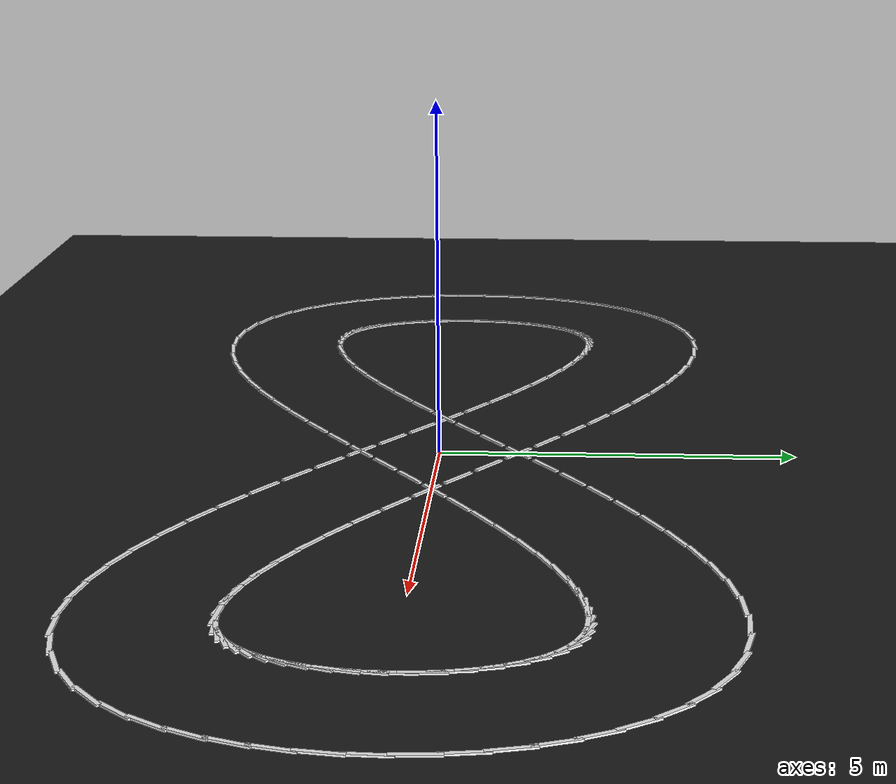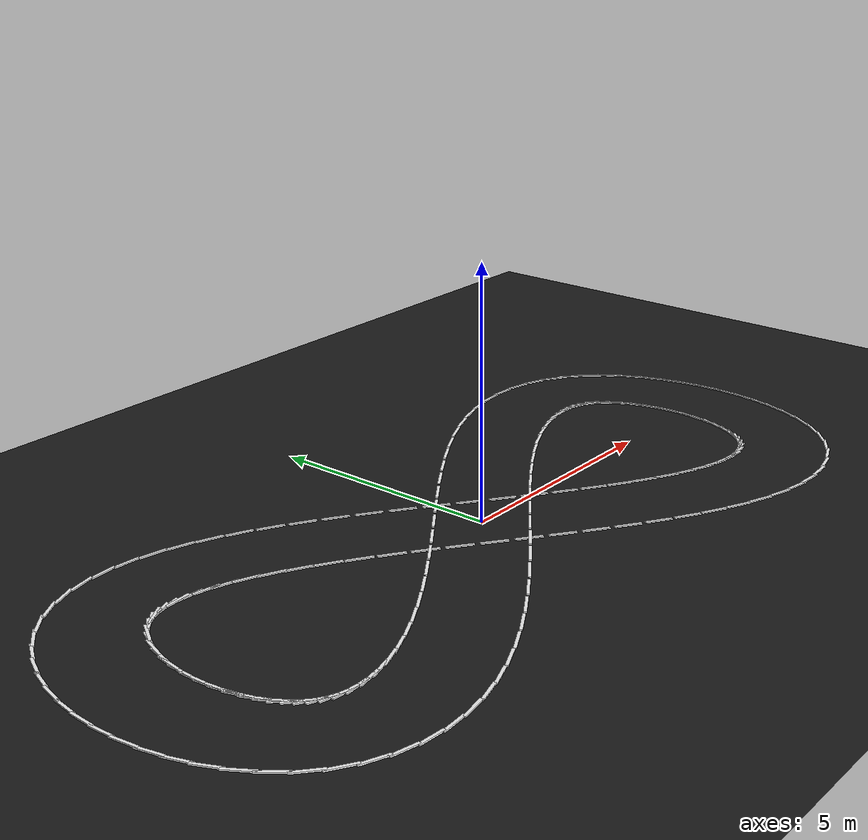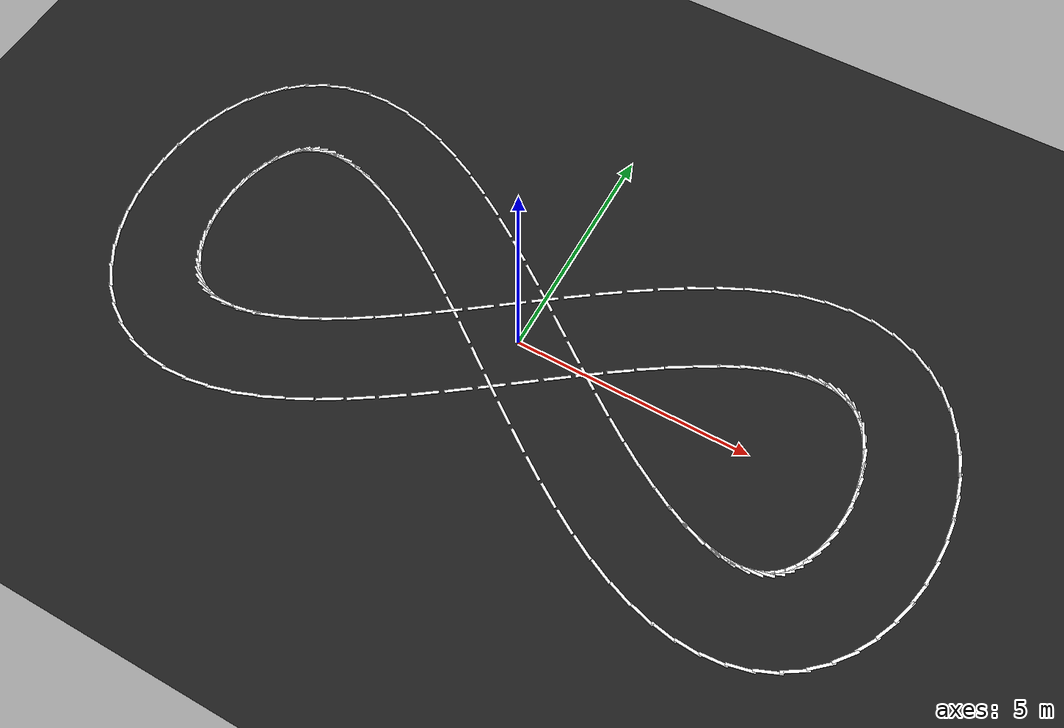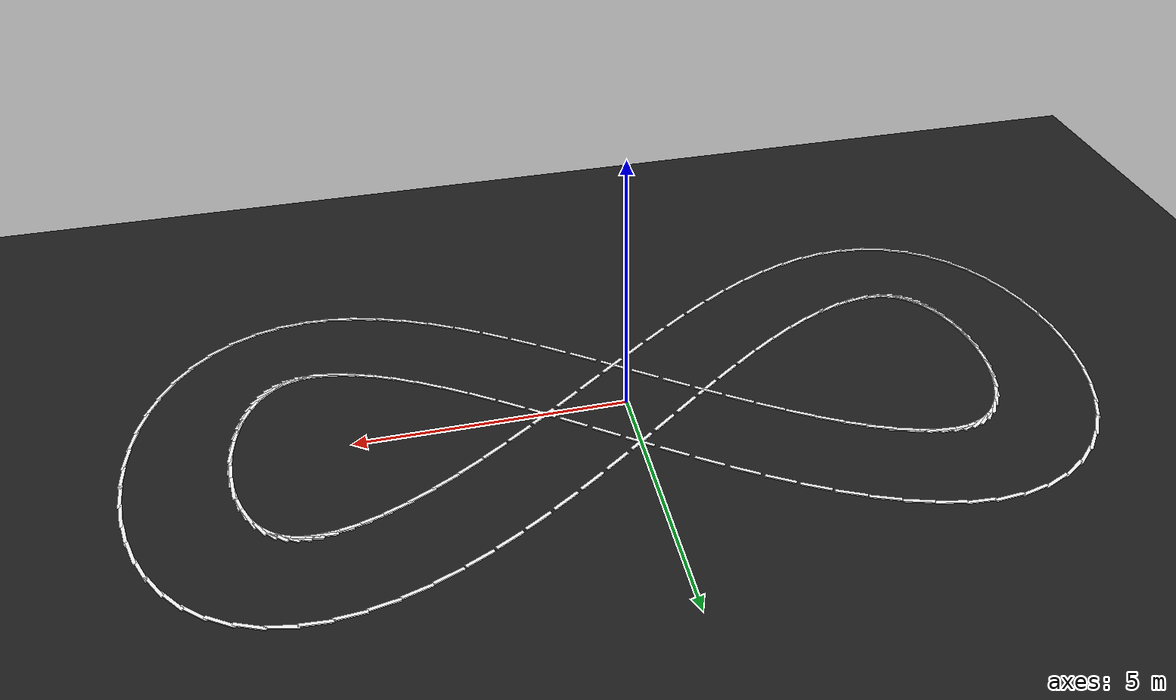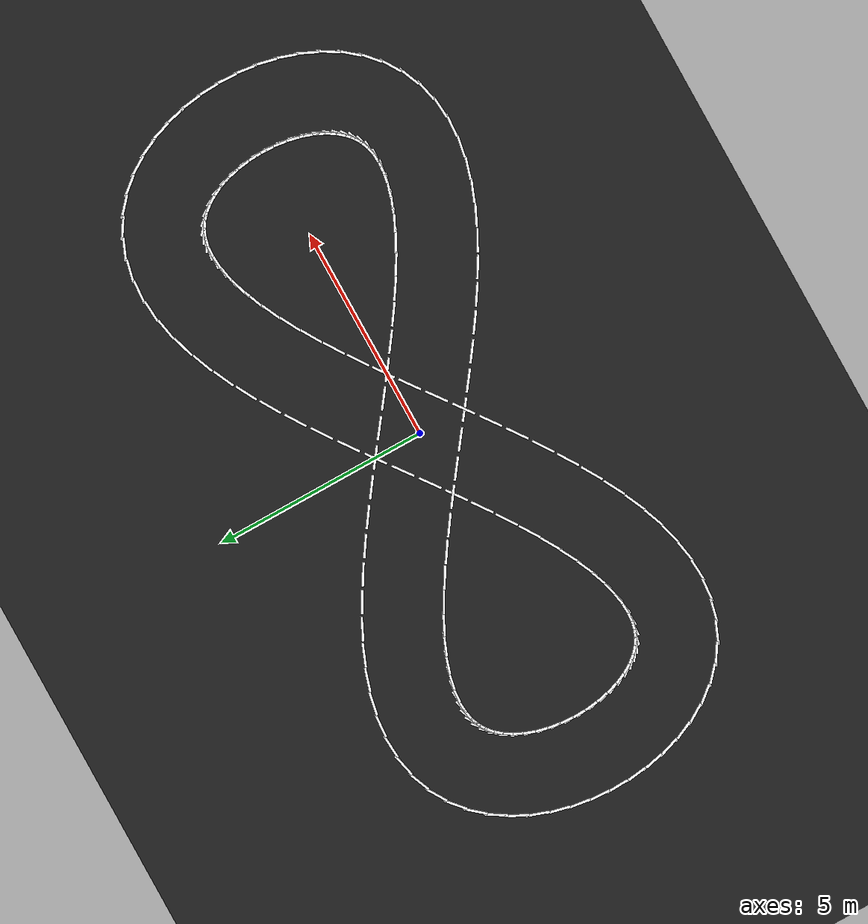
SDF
<sdf version="1.9">
 <world name="eight_shape_road_world">
  <model name="ground">
   <static>true</static>
   <link name="ground_link">
    <collision name="collision">
     <geometry><plane><normal>0 0 1</normal><size>50 50</size></plane></geometry>
    </collision>
    <visual name="visual">
     <geometry><plane><normal>0 0 1</normal><size>50 50</size></plane></geometry>
     <material><diffuse>0.12 0.12 0.12 1</diffuse></material>
    </visual>
   </link>
  </model>
  <model name="eight_lane_markers">
   <static>true</static>
   <link name="link">
    <visual name="seg_0">
     <pose>0.539 -0.721 0.015 0 0 0.642</pose>
     <geometry><box><size>0.55 0.06 0.025</size></box></geometry>
     <material><diffuse>1 1 1 1</diffuse></material>
    </visual>
    <visual name="seg_1">
     <pose>1.058 -0.332 0.015 0 0 0.636</pose>
     <geometry><box><size>0.55 0.06 0.025</size></box></geometry>
     <material><diffuse>1 1 1 1</diffuse></material>
    </visual>
    <visual name="seg_2">
     <pose>1.570 0.046 0.015 0 0 0.624</pose>
     <geometry><box><size>0.55 0.06 0.025</size></box></geometry>
     <material><diffuse>1 1 1 1</diffuse></material>
    </visual>
    <visual name="seg_3">
     <pose>2.072 0.407 0.015 0 0 0.604</pose>
     <geometry><box><size>0.55 0.06 0.025</size></box></geometry>
     <material><diffuse>1 1 1 1</diffuse></material>
    </visual>
    <visual name="seg_4">
     <pose>2.562 0.746 0.015 0 0 0.577</pose>
     <geometry><box><size>0.55 0.06 0.025</size></box></geometry>
     <material><diffuse>1 1 1 1</diffuse></material>
    </visual>
    <visual name="seg_5">
     <pose>3.036 1.055 0.015 0 0 0.542</pose>
     <geometry><box><size>0.55 0.06 0.025</size></box></geometry>
     <material><diffuse>1 1 1 1</diffuse></material>
    </visual>
    <visual name="seg_6">
     <pose>3.491 1.330 0.015 0 0 0.497</pose>
     <geometry><box><size>0.55 0.06 0.025</size></box></geometry>
     <material><diffuse>1 1 1 1</diffuse></material>
    </visual>
    <visual name="seg_7">
     <pose>3.923 1.566 0.015 0 0 0.441</pose>
     <geometry><box><size>0.55 0.06 0.025</size></box></geometry>
     <material><diffuse>1 1 1 1</diffuse></material>
    </visual>
    <visual name="seg_8">
     <pose>4.327 1.760 0.015 0 0 0.372</pose>
     <geometry><box><size>0.55 0.06 0.025</size></box></geometry>
     <material><diffuse>1 1 1 1</diffuse></material>
    </visual>
    <visual name="seg_9">
     <pose>4.700 1.909 0.015 0 0 0.288</pose>
     <geometry><box><size>0.55 0.06 0.025</size></box></geometry>
     <material><diffuse>1 1 1 1</diffuse></material>
    </visual>
    <visual name="seg_10">
     <pose>5.037 2.013 0.015 0 0 0.187</pose>
     <geometry><box><size>0.55 0.06 0.025</size></box></geometry>
     <material><diffuse>1 1 1 1</diffuse></material>
    </visual>
    <visual name="seg_11">
     <pose>5.335 2.076 0.015 0 0 0.067</pose>
     <geometry><box><size>0.55 0.06 0.025</size></box></geometry>
     <material><diffuse>1 1 1 1</diffuse></material>
    </visual>
    <visual name="seg_12">
     <pose>5.592 2.102 0.015 0 0 -0.072</pose>
     <geometry><box><size>0.55 0.06 0.025</size></box></geometry>
     <material><diffuse>1 1 1 1</diffuse></material>
    </visual>
    <visual name="seg_13">
     <pose>5.813 2.097 0.015 0 0 -0.227</pose>
     <geometry><box><size>0.55 0.06 0.025</size></box></geometry>
     <material><diffuse>1 1 1 1</diffuse></material>
    </visual>
    <visual name="seg_14">
     <pose>6.003 2.066 0.015 0 0 -0.392</pose>
     <geometry><box><size>0.55 0.06 0.025</size></box></geometry>
     <material><diffuse>1 1 1 1</diffuse></material>
    </visual>
    <visual name="seg_15">
     <pose>6.173 2.009 0.015 0 0 -0.561</pose>
     <geometry><box><size>0.55 0.06 0.025</size></box></geometry>
     <material><diffuse>1 1 1 1</diffuse></material>
    </visual>
    <visual name="seg_16">
     <pose>6.332 1.924 0.015 0 0 -0.724</pose>
     <geometry><box><size>0.55 0.06 0.025</size></box></geometry>
     <material><diffuse>1 1 1 1</diffuse></material>
    </visual>
    <visual name="seg_17">
     <pose>6.484 1.803 0.015 0 0 -0.875</pose>
     <geometry><box><size>0.55 0.06 0.025</size></box></geometry>
     <material><diffuse>1 1 1 1</diffuse></material>
    </visual>
    <visual name="seg_18">
     <pose>6.628 1.644 0.015 0 0 -1.012</pose>
     <geometry><box><size>0.55 0.06 0.025</size></box></geometry>
     <material><diffuse>1 1 1 1</diffuse></material>
    </visual>
    <visual name="seg_19">
     <pose>6.760 1.446 0.015 0 0 -1.135</pose>
     <geometry><box><size>0.55 0.06 0.025</size></box></geometry>
     <material><diffuse>1 1 1 1</diffuse></material>
    </visual>
    <visual name="seg_20">
     <pose>6.875 1.212 0.015 0 0 -1.245</pose>
     <geometry><box><size>0.55 0.06 0.025</size></box></geometry>
     <material><diffuse>1 1 1 1</diffuse></material>
    </visual>
    <visual name="seg_21">
     <pose>6.969 0.947 0.015 0 0 -1.345</pose>
     <geometry><box><size>0.55 0.06 0.025</size></box></geometry>
     <material><diffuse>1 1 1 1</diffuse></material>
    </visual>
    <visual name="seg_22">
     <pose>7.039 0.658 0.015 0 0 -1.438</pose>
     <geometry><box><size>0.55 0.06 0.025</size></box></geometry>
     <material><diffuse>1 1 1 1</diffuse></material>
    </visual>
    <visual name="seg_23">
     <pose>7.084 0.352 0.015 0 0 -1.527</pose>
     <geometry><box><size>0.55 0.06 0.025</size></box></geometry>
     <material><diffuse>1 1 1 1</diffuse></material>
    </visual>
    <visual name="seg_24">
     <pose>7.101 0.039 0.015 0 0 -1.615</pose>
     <geometry><box><size>0.55 0.06 0.025</size></box></geometry>
     <material><diffuse>1 1 1 1</diffuse></material>
    </visual>
    <visual name="seg_25">
     <pose>7.091 -0.273 0.015 0 0 -1.703</pose>
     <geometry><box><size>0.55 0.06 0.025</size></box></geometry>
     <material><diffuse>1 1 1 1</diffuse></material>
    </visual>
    <visual name="seg_26">
     <pose>7.054 -0.575 0.015 0 0 -1.796</pose>
     <geometry><box><size>0.55 0.06 0.025</size></box></geometry>
     <material><diffuse>1 1 1 1</diffuse></material>
    </visual>
    <visual name="seg_27">
     <pose>6.994 -0.860 0.015 0 0 -1.897</pose>
     <geometry><box><size>0.55 0.06 0.025</size></box></geometry>
     <material><diffuse>1 1 1 1</diffuse></material>
    </visual>
    <visual name="seg_28">
     <pose>6.912 -1.120 0.015 0 0 -2.007</pose>
     <geometry><box><size>0.55 0.06 0.025</size></box></geometry>
     <material><diffuse>1 1 1 1</diffuse></material>
    </visual>
    <visual name="seg_29">
     <pose>6.812 -1.349 0.015 0 0 -2.129</pose>
     <geometry><box><size>0.55 0.06 0.025</size></box></geometry>
     <material><diffuse>1 1 1 1</diffuse></material>
    </visual>
    <visual name="seg_30">
     <pose>6.700 -1.544 0.015 0 0 -2.267</pose>
     <geometry><box><size>0.55 0.06 0.025</size></box></geometry>
     <material><diffuse>1 1 1 1</diffuse></material>
    </visual>
    <visual name="seg_31">
     <pose>6.579 -1.706 0.015 0 0 -2.418</pose>
     <geometry><box><size>0.55 0.06 0.025</size></box></geometry>
     <material><diffuse>1 1 1 1</diffuse></material>
    </visual>
    <visual name="seg_32">
     <pose>6.450 -1.836 0.015 0 0 -2.581</pose>
     <geometry><box><size>0.55 0.06 0.025</size></box></geometry>
     <material><diffuse>1 1 1 1</diffuse></material>
    </visual>
    <visual name="seg_33">
     <pose>6.308 -1.940 0.015 0 0 -2.749</pose>
     <geometry><box><size>0.55 0.06 0.025</size></box></geometry>
     <material><diffuse>1 1 1 1</diffuse></material>
    </visual>
    <visual name="seg_34">
     <pose>6.145 -2.021 0.015 0 0 -2.915</pose>
     <geometry><box><size>0.55 0.06 0.025</size></box></geometry>
     <material><diffuse>1 1 1 1</diffuse></material>
    </visual>
    <visual name="seg_35">
     <pose>5.950 -2.077 0.015 0 0 -3.070</pose>
     <geometry><box><size>0.55 0.06 0.025</size></box></geometry>
     <material><diffuse>1 1 1 1</diffuse></material>
    </visual>
    <visual name="seg_36">
     <pose>5.717 -2.102 0.015 0 0 3.075</pose>
     <geometry><box><size>0.55 0.06 0.025</size></box></geometry>
     <material><diffuse>1 1 1 1</diffuse></material>
    </visual>
    <visual name="seg_37">
     <pose>5.442 -2.090 0.015 0 0 2.955</pose>
     <geometry><box><size>0.55 0.06 0.025</size></box></geometry>
     <material><diffuse>1 1 1 1</diffuse></material>
    </visual>
    <visual name="seg_38">
     <pose>5.126 -2.035 0.015 0 0 2.853</pose>
     <geometry><box><size>0.55 0.06 0.025</size></box></geometry>
     <material><diffuse>1 1 1 1</diffuse></material>
    </visual>
    <visual name="seg_39">
     <pose>4.772 -1.933 0.015 0 0 2.769</pose>
     <geometry><box><size>0.55 0.06 0.025</size></box></geometry>
     <material><diffuse>1 1 1 1</diffuse></material>
    </visual>
    <visual name="seg_40">
     <pose>4.384 -1.784 0.015 0 0 2.700</pose>
     <geometry><box><size>0.55 0.06 0.025</size></box></geometry>
     <material><diffuse>1 1 1 1</diffuse></material>
    </visual>
    <visual name="seg_41">
     <pose>3.968 -1.589 0.015 0 0 2.644</pose>
     <geometry><box><size>0.55 0.06 0.025</size></box></geometry>
     <material><diffuse>1 1 1 1</diffuse></material>
    </visual>
    <visual name="seg_42">
     <pose>3.526 -1.350 0.015 0 0 2.600</pose>
     <geometry><box><size>0.55 0.06 0.025</size></box></geometry>
     <material><diffuse>1 1 1 1</diffuse></material>
    </visual>
    <visual name="seg_43">
     <pose>3.063 -1.072 0.015 0 0 2.564</pose>
     <geometry><box><size>0.55 0.06 0.025</size></box></geometry>
     <material><diffuse>1 1 1 1</diffuse></material>
    </visual>
    <visual name="seg_44">
     <pose>2.582 -0.759 0.015 0 0 2.537</pose>
     <geometry><box><size>0.55 0.06 0.025</size></box></geometry>
     <material><diffuse>1 1 1 1</diffuse></material>
    </visual>
    <visual name="seg_45">
     <pose>2.086 -0.417 0.015 0 0 2.518</pose>
     <geometry><box><size>0.55 0.06 0.025</size></box></geometry>
     <material><diffuse>1 1 1 1</diffuse></material>
    </visual>
    <visual name="seg_46">
     <pose>1.579 -0.053 0.015 0 0 2.505</pose>
     <geometry><box><size>0.55 0.06 0.025</size></box></geometry>
     <material><diffuse>1 1 1 1</diffuse></material>
    </visual>
    <visual name="seg_47">
     <pose>1.062 0.329 0.015 0 0 2.499</pose>
     <geometry><box><size>0.55 0.06 0.025</size></box></geometry>
     <material><diffuse>1 1 1 1</diffuse></material>
    </visual>
    <visual name="seg_48">
     <pose>0.539 0.721 0.015 0 0 2.499</pose>
     <geometry><box><size>0.55 0.06 0.025</size></box></geometry>
     <material><diffuse>1 1 1 1</diffuse></material>
    </visual>
    <visual name="seg_49">
     <pose>0.012 1.115 0.015 0 0 2.505</pose>
     <geometry><box><size>0.55 0.06 0.025</size></box></geometry>
     <material><diffuse>1 1 1 1</diffuse></material>
    </visual>
    <visual name="seg_50">
     <pose>-0.519 1.507 0.015 0 0 2.518</pose>
     <geometry><box><size>0.55 0.06 0.025</size></box></geometry>
     <material><diffuse>1 1 1 1</diffuse></material>
    </visual>
    <visual name="seg_51">
     <pose>-1.049 1.889 0.015 0 0 2.537</pose>
     <geometry><box><size>0.55 0.06 0.025</size></box></geometry>
     <material><diffuse>1 1 1 1</diffuse></material>
    </visual>
    <visual name="seg_52">
     <pose>-1.579 2.254 0.015 0 0 2.564</pose>
     <geometry><box><size>0.55 0.06 0.025</size></box></geometry>
     <material><diffuse>1 1 1 1</diffuse></material>
    </visual>
    <visual name="seg_53">
     <pose>-2.107 2.597 0.015 0 0 2.600</pose>
     <geometry><box><size>0.55 0.06 0.025</size></box></geometry>
     <material><diffuse>1 1 1 1</diffuse></material>
    </visual>
    <visual name="seg_54">
     <pose>-2.632 2.912 0.015 0 0 2.644</pose>
     <geometry><box><size>0.55 0.06 0.025</size></box></geometry>
     <material><diffuse>1 1 1 1</diffuse></material>
    </visual>
    <visual name="seg_55">
     <pose>-3.154 3.194 0.015 0 0 2.700</pose>
     <geometry><box><size>0.55 0.06 0.025</size></box></geometry>
     <material><diffuse>1 1 1 1</diffuse></material>
    </visual>
    <visual name="seg_56">
     <pose>-3.673 3.436 0.015 0 0 2.769</pose>
     <geometry><box><size>0.55 0.06 0.025</size></box></geometry>
     <material><diffuse>1 1 1 1</diffuse></material>
    </visual>
    <visual name="seg_57">
     <pose>-4.189 3.635 0.015 0 0 2.853</pose>
     <geometry><box><size>0.55 0.06 0.025</size></box></geometry>
     <material><diffuse>1 1 1 1</diffuse></material>
    </visual>
    <visual name="seg_58">
     <pose>-4.703 3.782 0.015 0 0 2.955</pose>
     <geometry><box><size>0.55 0.06 0.025</size></box></geometry>
     <material><diffuse>1 1 1 1</diffuse></material>
    </visual>
    <visual name="seg_59">
     <pose>-5.214 3.872 0.015 0 0 3.075</pose>
     <geometry><box><size>0.55 0.06 0.025</size></box></geometry>
     <material><diffuse>1 1 1 1</diffuse></material>
    </visual>
    <visual name="seg_60">
     <pose>-5.721 3.898 0.015 0 0 -3.070</pose>
     <geometry><box><size>0.55 0.06 0.025</size></box></geometry>
     <material><diffuse>1 1 1 1</diffuse></material>
    </visual>
    <visual name="seg_61">
     <pose>-6.217 3.851 0.015 0 0 -2.915</pose>
     <geometry><box><size>0.55 0.06 0.025</size></box></geometry>
     <material><diffuse>1 1 1 1</diffuse></material>
    </visual>
    <visual name="seg_62">
     <pose>-6.691 3.729 0.015 0 0 -2.749</pose>
     <geometry><box><size>0.55 0.06 0.025</size></box></geometry>
     <material><diffuse>1 1 1 1</diffuse></material>
    </visual>
    <visual name="seg_63">
     <pose>-7.130 3.534 0.015 0 0 -2.581</pose>
     <geometry><box><size>0.55 0.06 0.025</size></box></geometry>
     <material><diffuse>1 1 1 1</diffuse></material>
    </visual>
    <visual name="seg_64">
     <pose>-7.524 3.273 0.015 0 0 -2.418</pose>
     <geometry><box><size>0.55 0.06 0.025</size></box></geometry>
     <material><diffuse>1 1 1 1</diffuse></material>
    </visual>
    <visual name="seg_65">
     <pose>-7.866 2.957 0.015 0 0 -2.267</pose>
     <geometry><box><size>0.55 0.06 0.025</size></box></geometry>
     <material><diffuse>1 1 1 1</diffuse></material>
    </visual>
    <visual name="seg_66">
     <pose>-8.154 2.598 0.015 0 0 -2.129</pose>
     <geometry><box><size>0.55 0.06 0.025</size></box></geometry>
     <material><diffuse>1 1 1 1</diffuse></material>
    </visual>
    <visual name="seg_67">
     <pose>-8.391 2.206 0.015 0 0 -2.007</pose>
     <geometry><box><size>0.55 0.06 0.025</size></box></geometry>
     <material><diffuse>1 1 1 1</diffuse></material>
    </visual>
    <visual name="seg_68">
     <pose>-8.580 1.788 0.015 0 0 -1.897</pose>
     <geometry><box><size>0.55 0.06 0.025</size></box></geometry>
     <material><diffuse>1 1 1 1</diffuse></material>
    </visual>
    <visual name="seg_69">
     <pose>-8.723 1.349 0.015 0 0 -1.796</pose>
     <geometry><box><size>0.55 0.06 0.025</size></box></geometry>
     <material><diffuse>1 1 1 1</diffuse></material>
    </visual>
    <visual name="seg_70">
     <pose>-8.824 0.895 0.015 0 0 -1.703</pose>
     <geometry><box><size>0.55 0.06 0.025</size></box></geometry>
     <material><diffuse>1 1 1 1</diffuse></material>
    </visual>
    <visual name="seg_71">
     <pose>-8.882 0.431 0.015 0 0 -1.615</pose>
     <geometry><box><size>0.55 0.06 0.025</size></box></geometry>
     <material><diffuse>1 1 1 1</diffuse></material>
    </visual>
    <visual name="seg_72">
     <pose>-8.899 -0.039 0.015 0 0 -1.527</pose>
     <geometry><box><size>0.55 0.06 0.025</size></box></geometry>
     <material><diffuse>1 1 1 1</diffuse></material>
    </visual>
    <visual name="seg_73">
     <pose>-8.875 -0.511 0.015 0 0 -1.438</pose>
     <geometry><box><size>0.55 0.06 0.025</size></box></geometry>
     <material><diffuse>1 1 1 1</diffuse></material>
    </visual>
    <visual name="seg_74">
     <pose>-8.809 -0.978 0.015 0 0 -1.345</pose>
     <geometry><box><size>0.55 0.06 0.025</size></box></geometry>
     <material><diffuse>1 1 1 1</diffuse></material>
    </visual>
    <visual name="seg_75">
     <pose>-8.699 -1.436 0.015 0 0 -1.245</pose>
     <geometry><box><size>0.55 0.06 0.025</size></box></geometry>
     <material><diffuse>1 1 1 1</diffuse></material>
    </visual>
    <visual name="seg_76">
     <pose>-8.543 -1.880 0.015 0 0 -1.135</pose>
     <geometry><box><size>0.55 0.06 0.025</size></box></geometry>
     <material><diffuse>1 1 1 1</diffuse></material>
    </visual>
    <visual name="seg_77">
     <pose>-8.339 -2.303 0.015 0 0 -1.012</pose>
     <geometry><box><size>0.55 0.06 0.025</size></box></geometry>
     <material><diffuse>1 1 1 1</diffuse></material>
    </visual>
    <visual name="seg_78">
     <pose>-8.082 -2.698 0.015 0 0 -0.875</pose>
     <geometry><box><size>0.55 0.06 0.025</size></box></geometry>
     <material><diffuse>1 1 1 1</diffuse></material>
    </visual>
    <visual name="seg_79">
     <pose>-7.771 -3.055 0.015 0 0 -0.724</pose>
     <geometry><box><size>0.55 0.06 0.025</size></box></geometry>
     <material><diffuse>1 1 1 1</diffuse></material>
    </visual>
    <visual name="seg_80">
     <pose>-7.407 -3.360 0.015 0 0 -0.561</pose>
     <geometry><box><size>0.55 0.06 0.025</size></box></geometry>
     <material><diffuse>1 1 1 1</diffuse></material>
    </visual>
    <visual name="seg_81">
     <pose>-6.996 -3.603 0.015 0 0 -0.392</pose>
     <geometry><box><size>0.55 0.06 0.025</size></box></geometry>
     <material><diffuse>1 1 1 1</diffuse></material>
    </visual>
    <visual name="seg_82">
     <pose>-6.549 -3.775 0.015 0 0 -0.227</pose>
     <geometry><box><size>0.55 0.06 0.025</size></box></geometry>
     <material><diffuse>1 1 1 1</diffuse></material>
    </visual>
    <visual name="seg_83">
     <pose>-6.079 -3.872 0.015 0 0 -0.072</pose>
     <geometry><box><size>0.55 0.06 0.025</size></box></geometry>
     <material><diffuse>1 1 1 1</diffuse></material>
    </visual>
    <visual name="seg_84">
     <pose>-5.597 -3.898 0.015 0 0 0.067</pose>
     <geometry><box><size>0.55 0.06 0.025</size></box></geometry>
     <material><diffuse>1 1 1 1</diffuse></material>
    </visual>
    <visual name="seg_85">
     <pose>-5.107 -3.859 0.015 0 0 0.187</pose>
     <geometry><box><size>0.55 0.06 0.025</size></box></geometry>
     <material><diffuse>1 1 1 1</diffuse></material>
    </visual>
    <visual name="seg_86">
     <pose>-4.614 -3.761 0.015 0 0 0.288</pose>
     <geometry><box><size>0.55 0.06 0.025</size></box></geometry>
     <material><diffuse>1 1 1 1</diffuse></material>
    </visual>
    <visual name="seg_87">
     <pose>-4.117 -3.610 0.015 0 0 0.372</pose>
     <geometry><box><size>0.55 0.06 0.025</size></box></geometry>
     <material><diffuse>1 1 1 1</diffuse></material>
    </visual>
    <visual name="seg_88">
     <pose>-3.616 -3.412 0.015 0 0 0.441</pose>
     <geometry><box><size>0.55 0.06 0.025</size></box></geometry>
     <material><diffuse>1 1 1 1</diffuse></material>
    </visual>
    <visual name="seg_89">
     <pose>-3.109 -3.171 0.015 0 0 0.497</pose>
     <geometry><box><size>0.55 0.06 0.025</size></box></geometry>
     <material><diffuse>1 1 1 1</diffuse></material>
    </visual>
    <visual name="seg_90">
     <pose>-2.597 -2.892 0.015 0 0 0.542</pose>
     <geometry><box><size>0.55 0.06 0.025</size></box></geometry>
     <material><diffuse>1 1 1 1</diffuse></material>
    </visual>
    <visual name="seg_91">
     <pose>-2.080 -2.580 0.015 0 0 0.577</pose>
     <geometry><box><size>0.55 0.06 0.025</size></box></geometry>
     <material><diffuse>1 1 1 1</diffuse></material>
    </visual>
    <visual name="seg_92">
     <pose>-1.559 -2.241 0.015 0 0 0.604</pose>
     <geometry><box><size>0.55 0.06 0.025</size></box></geometry>
     <material><diffuse>1 1 1 1</diffuse></material>
    </visual>
    <visual name="seg_93">
     <pose>-1.035 -1.879 0.015 0 0 0.624</pose>
     <geometry><box><size>0.55 0.06 0.025</size></box></geometry>
     <material><diffuse>1 1 1 1</diffuse></material>
    </visual>
    <visual name="seg_94">
     <pose>-0.509 -1.500 0.015 0 0 0.636</pose>
     <geometry><box><size>0.55 0.06 0.025</size></box></geometry>
     <material><diffuse>1 1 1 1</diffuse></material>
    </visual>
    <visual name="seg_95">
     <pose>0.016 -1.112 0.015 0 0 0.642</pose>
     <geometry><box><size>0.55 0.06 0.025</size></box></geometry>
     <material><diffuse>1 1 1 1</diffuse></material>
    </visual>
    <visual name="seg_96">
     <pose>-0.539 0.721 0.015 0 0 0.642</pose>
     <geometry><box><size>0.55 0.06 0.025</size></box></geometry>
     <material><diffuse>1 1 1 1</diffuse></material>
    </visual>
    <visual name="seg_97">
     <pose>-0.012 1.115 0.015 0 0 0.636</pose>
     <geometry><box><size>0.55 0.06 0.025</size></box></geometry>
     <material><diffuse>1 1 1 1</diffuse></material>
    </visual>
    <visual name="seg_98">
     <pose>0.519 1.507 0.015 0 0 0.624</pose>
     <geometry><box><size>0.55 0.06 0.025</size></box></geometry>
     <material><diffuse>1 1 1 1</diffuse></material>
    </visual>
    <visual name="seg_99">
     <pose>1.049 1.889 0.015 0 0 0.604</pose>
     <geometry><box><size>0.55 0.06 0.025</size></box></geometry>
     <material><diffuse>1 1 1 1</diffuse></material>
    </visual>
    <visual name="seg_100">
     <pose>1.579 2.254 0.015 0 0 0.577</pose>
     <geometry><box><size>0.55 0.06 0.025</size></box></geometry>
     <material><diffuse>1 1 1 1</diffuse></material>
    </visual>
    <visual name="seg_101">
     <pose>2.107 2.597 0.015 0 0 0.542</pose>
     <geometry><box><size>0.55 0.06 0.025</size></box></geometry>
     <material><diffuse>1 1 1 1</diffuse></material>
    </visual>
    <visual name="seg_102">
     <pose>2.632 2.912 0.015 0 0 0.497</pose>
     <geometry><box><size>0.55 0.06 0.025</size></box></geometry>
     <material><diffuse>1 1 1 1</diffuse></material>
    </visual>
    <visual name="seg_103">
     <pose>3.154 3.194 0.015 0 0 0.441</pose>
     <geometry><box><size>0.55 0.06 0.025</size></box></geometry>
     <material><diffuse>1 1 1 1</diffuse></material>
    </visual>
    <visual name="seg_104">
     <pose>3.673 3.436 0.015 0 0 0.372</pose>
     <geometry><box><size>0.55 0.06 0.025</size></box></geometry>
     <material><diffuse>1 1 1 1</diffuse></material>
    </visual>
    <visual name="seg_105">
     <pose>4.189 3.635 0.015 0 0 0.288</pose>
     <geometry><box><size>0.55 0.06 0.025</size></box></geometry>
     <material><diffuse>1 1 1 1</diffuse></material>
    </visual>
    <visual name="seg_106">
     <pose>4.703 3.782 0.015 0 0 0.187</pose>
     <geometry><box><size>0.55 0.06 0.025</size></box></geometry>
     <material><diffuse>1 1 1 1</diffuse></material>
    </visual>
    <visual name="seg_107">
     <pose>5.214 3.872 0.015 0 0 0.067</pose>
     <geometry><box><size>0.55 0.06 0.025</size></box></geometry>
     <material><diffuse>1 1 1 1</diffuse></material>
    </visual>
    <visual name="seg_108">
     <pose>5.721 3.898 0.015 0 0 -0.072</pose>
     <geometry><box><size>0.55 0.06 0.025</size></box></geometry>
     <material><diffuse>1 1 1 1</diffuse></material>
    </visual>
    <visual name="seg_109">
     <pose>6.217 3.851 0.015 0 0 -0.227</pose>
     <geometry><box><size>0.55 0.06 0.025</size></box></geometry>
     <material><diffuse>1 1 1 1</diffuse></material>
    </visual>
    <visual name="seg_110">
     <pose>6.691 3.729 0.015 0 0 -0.392</pose>
     <geometry><box><size>0.55 0.06 0.025</size></box></geometry>
     <material><diffuse>1 1 1 1</diffuse></material>
    </visual>
    <visual name="seg_111">
     <pose>7.130 3.534 0.015 0 0 -0.561</pose>
     <geometry><box><size>0.55 0.06 0.025</size></box></geometry>
     <material><diffuse>1 1 1 1</diffuse></material>
    </visual>
    <visual name="seg_112">
     <pose>7.524 3.273 0.015 0 0 -0.724</pose>
     <geometry><box><size>0.55 0.06 0.025</size></box></geometry>
     <material><diffuse>1 1 1 1</diffuse></material>
    </visual>
    <visual name="seg_113">
     <pose>7.866 2.957 0.015 0 0 -0.875</pose>
     <geometry><box><size>0.55 0.06 0.025</size></box></geometry>
     <material><diffuse>1 1 1 1</diffuse></material>
    </visual>
    <visual name="seg_114">
     <pose>8.154 2.598 0.015 0 0 -1.012</pose>
     <geometry><box><size>0.55 0.06 0.025</size></box></geometry>
     <material><diffuse>1 1 1 1</diffuse></material>
    </visual>
    <visual name="seg_115">
     <pose>8.391 2.206 0.015 0 0 -1.135</pose>
     <geometry><box><size>0.55 0.06 0.025</size></box></geometry>
     <material><diffuse>1 1 1 1</diffuse></material>
    </visual>
    <visual name="seg_116">
     <pose>8.580 1.788 0.015 0 0 -1.245</pose>
     <geometry><box><size>0.55 0.06 0.025</size></box></geometry>
     <material><diffuse>1 1 1 1</diffuse></material>
    </visual>
    <visual name="seg_117">
     <pose>8.723 1.349 0.015 0 0 -1.345</pose>
     <geometry><box><size>0.55 0.06 0.025</size></box></geometry>
     <material><diffuse>1 1 1 1</diffuse></material>
    </visual>
    <visual name="seg_118">
     <pose>8.824 0.895 0.015 0 0 -1.438</pose>
     <geometry><box><size>0.55 0.06 0.025</size></box></geometry>
     <material><diffuse>1 1 1 1</diffuse></material>
    </visual>
    <visual name="seg_119">
     <pose>8.882 0.431 0.015 0 0 -1.527</pose>
     <geometry><box><size>0.55 0.06 0.025</size></box></geometry>
     <material><diffuse>1 1 1 1</diffuse></material>
    </visual>
    <visual name="seg_120">
     <pose>8.899 -0.039 0.015 0 0 -1.615</pose>
     <geometry><box><size>0.55 0.06 0.025</size></box></geometry>
     <material><diffuse>1 1 1 1</diffuse></material>
    </visual>
    <visual name="seg_121">
     <pose>8.875 -0.511 0.015 0 0 -1.703</pose>
     <geometry><box><size>0.55 0.06 0.025</size></box></geometry>
     <material><diffuse>1 1 1 1</diffuse></material>
    </visual>
    <visual name="seg_122">
     <pose>8.809 -0.978 0.015 0 0 -1.796</pose>
     <geometry><box><size>0.55 0.06 0.025</size></box></geometry>
     <material><diffuse>1 1 1 1</diffuse></material>
    </visual>
    <visual name="seg_123">
     <pose>8.699 -1.436 0.015 0 0 -1.897</pose>
     <geometry><box><size>0.55 0.06 0.025</size></box></geometry>
     <material><diffuse>1 1 1 1</diffuse></material>
    </visual>
    <visual name="seg_124">
     <pose>8.543 -1.880 0.015 0 0 -2.007</pose>
     <geometry><box><size>0.55 0.06 0.025</size></box></geometry>
     <material><diffuse>1 1 1 1</diffuse></material>
    </visual>
    <visual name="seg_125">
     <pose>8.339 -2.303 0.015 0 0 -2.129</pose>
     <geometry><box><size>0.55 0.06 0.025</size></box></geometry>
     <material><diffuse>1 1 1 1</diffuse></material>
    </visual>
    <visual name="seg_126">
     <pose>8.082 -2.698 0.015 0 0 -2.267</pose>
     <geometry><box><size>0.55 0.06 0.025</size></box></geometry>
     <material><diffuse>1 1 1 1</diffuse></material>
    </visual>
    <visual name="seg_127">
     <pose>7.771 -3.055 0.015 0 0 -2.418</pose>
     <geometry><box><size>0.55 0.06 0.025</size></box></geometry>
     <material><diffuse>1 1 1 1</diffuse></material>
    </visual>
    <visual name="seg_128">
     <pose>7.407 -3.360 0.015 0 0 -2.581</pose>
     <geometry><box><size>0.55 0.06 0.025</size></box></geometry>
     <material><diffuse>1 1 1 1</diffuse></material>
    </visual>
    <visual name="seg_129">
     <pose>6.996 -3.603 0.015 0 0 -2.749</pose>
     <geometry><box><size>0.55 0.06 0.025</size></box></geometry>
     <material><diffuse>1 1 1 1</diffuse></material>
    </visual>
    <visual name="seg_130">
     <pose>6.549 -3.775 0.015 0 0 -2.915</pose>
     <geometry><box><size>0.55 0.06 0.025</size></box></geometry>
     <material><diffuse>1 1 1 1</diffuse></material>
    </visual>
    <visual name="seg_131">
     <pose>6.079 -3.872 0.015 0 0 -3.070</pose>
     <geometry><box><size>0.55 0.06 0.025</size></box></geometry>
     <material><diffuse>1 1 1 1</diffuse></material>
    </visual>
    <visual name="seg_132">
     <pose>5.597 -3.898 0.015 0 0 3.075</pose>
     <geometry><box><size>0.55 0.06 0.025</size></box></geometry>
     <material><diffuse>1 1 1 1</diffuse></material>
    </visual>
    <visual name="seg_133">
     <pose>5.107 -3.859 0.015 0 0 2.955</pose>
     <geometry><box><size>0.55 0.06 0.025</size></box></geometry>
     <material><diffuse>1 1 1 1</diffuse></material>
    </visual>
    <visual name="seg_134">
     <pose>4.614 -3.761 0.015 0 0 2.853</pose>
     <geometry><box><size>0.55 0.06 0.025</size></box></geometry>
     <material><diffuse>1 1 1 1</diffuse></material>
    </visual>
    <visual name="seg_135">
     <pose>4.117 -3.610 0.015 0 0 2.769</pose>
     <geometry><box><size>0.55 0.06 0.025</size></box></geometry>
     <material><diffuse>1 1 1 1</diffuse></material>
    </visual>
    <visual name="seg_136">
     <pose>3.616 -3.412 0.015 0 0 2.700</pose>
     <geometry><box><size>0.55 0.06 0.025</size></box></geometry>
     <material><diffuse>1 1 1 1</diffuse></material>
    </visual>
    <visual name="seg_137">
     <pose>3.109 -3.171 0.015 0 0 2.644</pose>
     <geometry><box><size>0.55 0.06 0.025</size></box></geometry>
     <material><diffuse>1 1 1 1</diffuse></material>
    </visual>
    <visual name="seg_138">
     <pose>2.597 -2.892 0.015 0 0 2.600</pose>
     <geometry><box><size>0.55 0.06 0.025</size></box></geometry>
     <material><diffuse>1 1 1 1</diffuse></material>
    </visual>
    <visual name="seg_139">
     <pose>2.080 -2.580 0.015 0 0 2.564</pose>
     <geometry><box><size>0.55 0.06 0.025</size></box></geometry>
     <material><diffuse>1 1 1 1</diffuse></material>
    </visual>
    <visual name="seg_140">
     <pose>1.559 -2.241 0.015 0 0 2.537</pose>
     <geometry><box><size>0.55 0.06 0.025</size></box></geometry>
     <material><diffuse>1 1 1 1</diffuse></material>
    </visual>
    <visual name="seg_141">
     <pose>1.035 -1.879 0.015 0 0 2.518</pose>
     <geometry><box><size>0.55 0.06 0.025</size></box></geometry>
     <material><diffuse>1 1 1 1</diffuse></material>
    </visual>
    <visual name="seg_142">
     <pose>0.509 -1.500 0.015 0 0 2.505</pose>
     <geometry><box><size>0.55 0.06 0.025</size></box></geometry>
     <material><diffuse>1 1 1 1</diffuse></material>
    </visual>
    <visual name="seg_143">
     <pose>-0.016 -1.112 0.015 0 0 2.499</pose>
     <geometry><box><size>0.55 0.06 0.025</size></box></geometry>
     <material><diffuse>1 1 1 1</diffuse></material>
    </visual>
    <visual name="seg_144">
     <pose>-0.539 -0.721 0.015 0 0 2.499</pose>
     <geometry><box><size>0.55 0.06 0.025</size></box></geometry>
     <material><diffuse>1 1 1 1</diffuse></material>
    </visual>
    <visual name="seg_145">
     <pose>-1.058 -0.332 0.015 0 0 2.505</pose>
     <geometry><box><size>0.55 0.06 0.025</size></box></geometry>
     <material><diffuse>1 1 1 1</diffuse></material>
    </visual>
    <visual name="seg_146">
     <pose>-1.570 0.046 0.015 0 0 2.518</pose>
     <geometry><box><size>0.55 0.06 0.025</size></box></geometry>
     <material><diffuse>1 1 1 1</diffuse></material>
    </visual>
    <visual name="seg_147">
     <pose>-2.072 0.407 0.015 0 0 2.537</pose>
     <geometry><box><size>0.55 0.06 0.025</size></box></geometry>
     <material><diffuse>1 1 1 1</diffuse></material>
    </visual>
    <visual name="seg_148">
     <pose>-2.562 0.746 0.015 0 0 2.564</pose>
     <geometry><box><size>0.55 0.06 0.025</size></box></geometry>
     <material><diffuse>1 1 1 1</diffuse></material>
    </visual>
    <visual name="seg_149">
     <pose>-3.036 1.055 0.015 0 0 2.600</pose>
     <geometry><box><size>0.55 0.06 0.025</size></box></geometry>
     <material><diffuse>1 1 1 1</diffuse></material>
    </visual>
    <visual name="seg_150">
     <pose>-3.491 1.330 0.015 0 0 2.644</pose>
     <geometry><box><size>0.55 0.06 0.025</size></box></geometry>
     <material><diffuse>1 1 1 1</diffuse></material>
    </visual>
    <visual name="seg_151">
     <pose>-3.923 1.566 0.015 0 0 2.700</pose>
     <geometry><box><size>0.55 0.06 0.025</size></box></geometry>
     <material><diffuse>1 1 1 1</diffuse></material>
    </visual>
    <visual name="seg_152">
     <pose>-4.327 1.760 0.015 0 0 2.769</pose>
     <geometry><box><size>0.55 0.06 0.025</size></box></geometry>
     <material><diffuse>1 1 1 1</diffuse></material>
    </visual>
    <visual name="seg_153">
     <pose>-4.700 1.909 0.015 0 0 2.853</pose>
     <geometry><box><size>0.55 0.06 0.025</size></box></geometry>
     <material><diffuse>1 1 1 1</diffuse></material>
    </visual>
    <visual name="seg_154">
     <pose>-5.037 2.013 0.015 0 0 2.955</pose>
     <geometry><box><size>0.55 0.06 0.025</size></box></geometry>
     <material><diffuse>1 1 1 1</diffuse></material>
    </visual>
    <visual name="seg_155">
     <pose>-5.335 2.076 0.015 0 0 3.075</pose>
     <geometry><box><size>0.55 0.06 0.025</size></box></geometry>
     <material><diffuse>1 1 1 1</diffuse></material>
    </visual>
    <visual name="seg_156">
     <pose>-5.592 2.102 0.015 0 0 -3.070</pose>
     <geometry><box><size>0.55 0.06 0.025</size></box></geometry>
     <material><diffuse>1 1 1 1</diffuse></material>
    </visual>
    <visual name="seg_157">
     <pose>-5.813 2.097 0.015 0 0 -2.915</pose>
     <geometry><box><size>0.55 0.06 0.025</size></box></geometry>
     <material><diffuse>1 1 1 1</diffuse></material>
    </visual>
    <visual name="seg_158">
     <pose>-6.003 2.066 0.015 0 0 -2.749</pose>
     <geometry><box><size>0.55 0.06 0.025</size></box></geometry>
     <material><diffuse>1 1 1 1</diffuse></material>
    </visual>
    <visual name="seg_159">
     <pose>-6.173 2.009 0.015 0 0 -2.581</pose>
     <geometry><box><size>0.55 0.06 0.025</size></box></geometry>
     <material><diffuse>1 1 1 1</diffuse></material>
    </visual>
    <visual name="seg_160">
     <pose>-6.332 1.924 0.015 0 0 -2.418</pose>
     <geometry><box><size>0.55 0.06 0.025</size></box></geometry>
     <material><diffuse>1 1 1 1</diffuse></material>
    </visual>
    <visual name="seg_161">
     <pose>-6.484 1.803 0.015 0 0 -2.267</pose>
     <geometry><box><size>0.55 0.06 0.025</size></box></geometry>
     <material><diffuse>1 1 1 1</diffuse></material>
    </visual>
    <visual name="seg_162">
     <pose>-6.628 1.644 0.015 0 0 -2.129</pose>
     <geometry><box><size>0.55 0.06 0.025</size></box></geometry>
     <material><diffuse>1 1 1 1</diffuse></material>
    </visual>
    <visual name="seg_163">
     <pose>-6.760 1.446 0.015 0 0 -2.007</pose>
     <geometry><box><size>0.55 0.06 0.025</size></box></geometry>
     <material><diffuse>1 1 1 1</diffuse></material>
    </visual>
    <visual name="seg_164">
     <pose>-6.875 1.212 0.015 0 0 -1.897</pose>
     <geometry><box><size>0.55 0.06 0.025</size></box></geometry>
     <material><diffuse>1 1 1 1</diffuse></material>
    </visual>
    <visual name="seg_165">
     <pose>-6.969 0.947 0.015 0 0 -1.796</pose>
     <geometry><box><size>0.55 0.06 0.025</size></box></geometry>
     <material><diffuse>1 1 1 1</diffuse></material>
    </visual>
    <visual name="seg_166">
     <pose>-7.039 0.658 0.015 0 0 -1.703</pose>
     <geometry><box><size>0.55 0.06 0.025</size></box></geometry>
     <material><diffuse>1 1 1 1</diffuse></material>
    </visual>
    <visual name="seg_167">
     <pose>-7.084 0.352 0.015 0 0 -1.615</pose>
     <geometry><box><size>0.55 0.06 0.025</size></box></geometry>
     <material><diffuse>1 1 1 1</diffuse></material>
    </visual>
    <visual name="seg_168">
     <pose>-7.101 0.039 0.015 0 0 -1.527</pose>
     <geometry><box><size>0.55 0.06 0.025</size></box></geometry>
     <material><diffuse>1 1 1 1</diffuse></material>
    </visual>
    <visual name="seg_169">
     <pose>-7.091 -0.273 0.015 0 0 -1.438</pose>
     <geometry><box><size>0.55 0.06 0.025</size></box></geometry>
     <material><diffuse>1 1 1 1</diffuse></material>
    </visual>
    <visual name="seg_170">
     <pose>-7.054 -0.575 0.015 0 0 -1.345</pose>
     <geometry><box><size>0.55 0.06 0.025</size></box></geometry>
     <material><diffuse>1 1 1 1</diffuse></material>
    </visual>
    <visual name="seg_171">
     <pose>-6.994 -0.860 0.015 0 0 -1.245</pose>
     <geometry><box><size>0.55 0.06 0.025</size></box></geometry>
     <material><diffuse>1 1 1 1</diffuse></material>
    </visual>
    <visual name="seg_172">
     <pose>-6.912 -1.120 0.015 0 0 -1.135</pose>
     <geometry><box><size>0.55 0.06 0.025</size></box></geometry>
     <material><diffuse>1 1 1 1</diffuse></material>
    </visual>
    <visual name="seg_173">
     <pose>-6.812 -1.349 0.015 0 0 -1.012</pose>
     <geometry><box><size>0.55 0.06 0.025</size></box></geometry>
     <material><diffuse>1 1 1 1</diffuse></material>
    </visual>
    <visual name="seg_174">
     <pose>-6.700 -1.544 0.015 0 0 -0.875</pose>
     <geometry><box><size>0.55 0.06 0.025</size></box></geometry>
     <material><diffuse>1 1 1 1</diffuse></material>
    </visual>
    <visual name="seg_175">
     <pose>-6.579 -1.706 0.015 0 0 -0.724</pose>
     <geometry><box><size>0.55 0.06 0.025</size></box></geometry>
     <material><diffuse>1 1 1 1</diffuse></material>
    </visual>
    <visual name="seg_176">
     <pose>-6.450 -1.836 0.015 0 0 -0.561</pose>
     <geometry><box><size>0.55 0.06 0.025</size></box></geometry>
     <material><diffuse>1 1 1 1</diffuse></material>
    </visual>
    <visual name="seg_177">
     <pose>-6.308 -1.940 0.015 0 0 -0.392</pose>
     <geometry><box><size>0.55 0.06 0.025</size></box></geometry>
     <material><diffuse>1 1 1 1</diffuse></material>
    </visual>
    <visual name="seg_178">
     <pose>-6.145 -2.021 0.015 0 0 -0.227</pose>
     <geometry><box><size>0.55 0.06 0.025</size></box></geometry>
     <material><diffuse>1 1 1 1</diffuse></material>
    </visual>
    <visual name="seg_179">
     <pose>-5.950 -2.077 0.015 0 0 -0.072</pose>
     <geometry><box><size>0.55 0.06 0.025</size></box></geometry>
     <material><diffuse>1 1 1 1</diffuse></material>
    </visual>
    <visual name="seg_180">
     <pose>-5.717 -2.102 0.015 0 0 0.067</pose>
     <geometry><box><size>0.55 0.06 0.025</size></box></geometry>
     <material><diffuse>1 1 1 1</diffuse></material>
    </visual>
    <visual name="seg_181">
     <pose>-5.442 -2.090 0.015 0 0 0.187</pose>
     <geometry><box><size>0.55 0.06 0.025</size></box></geometry>
     <material><diffuse>1 1 1 1</diffuse></material>
    </visual>
    <visual name="seg_182">
     <pose>-5.126 -2.035 0.015 0 0 0.288</pose>
     <geometry><box><size>0.55 0.06 0.025</size></box></geometry>
     <material><diffuse>1 1 1 1</diffuse></material>
    </visual>
    <visual name="seg_183">
     <pose>-4.772 -1.933 0.015 0 0 0.372</pose>
     <geometry><box><size>0.55 0.06 0.025</size></box></geometry>
     <material><diffuse>1 1 1 1</diffuse></material>
    </visual>
    <visual name="seg_184">
     <pose>-4.384 -1.784 0.015 0 0 0.441</pose>
     <geometry><box><size>0.55 0.06 0.025</size></box></geometry>
     <material><diffuse>1 1 1 1</diffuse></material>
    </visual>
    <visual name="seg_185">
     <pose>-3.968 -1.589 0.015 0 0 0.497</pose>
     <geometry><box><size>0.55 0.06 0.025</size></box></geometry>
     <material><diffuse>1 1 1 1</diffuse></material>
    </visual>
    <visual name="seg_186">
     <pose>-3.526 -1.350 0.015 0 0 0.542</pose>
     <geometry><box><size>0.55 0.06 0.025</size></box></geometry>
     <material><diffuse>1 1 1 1</diffuse></material>
    </visual>
    <visual name="seg_187">
     <pose>-3.063 -1.072 0.015 0 0 0.577</pose>
     <geometry><box><size>0.55 0.06 0.025</size></box></geometry>
     <material><diffuse>1 1 1 1</diffuse></material>
    </visual>
    <visual name="seg_188">
     <pose>-2.582 -0.759 0.015 0 0 0.604</pose>
     <geometry><box><size>0.55 0.06 0.025</size></box></geometry>
     <material><diffuse>1 1 1 1</diffuse></material>
    </visual>
    <visual name="seg_189">
     <pose>-2.086 -0.417 0.015 0 0 0.624</pose>
     <geometry><box><size>0.55 0.06 0.025</size></box></geometry>
     <material><diffuse>1 1 1 1</diffuse></material>
    </visual>
    <visual name="seg_190">
     <pose>-1.579 -0.053 0.015 0 0 0.636</pose>
     <geometry><box><size>0.55 0.06 0.025</size></box></geometry>
     <material><diffuse>1 1 1 1</diffuse></material>
    </visual>
    <visual name="seg_191">
     <pose>-1.062 0.329 0.015 0 0 0.642</pose>
     <geometry><box><size>0.55 0.06 0.025</size></box></geometry>
     <material><diffuse>1 1 1 1</diffuse></material>
    </visual>
   </link>
  </model>
 </world>
</sdf>
